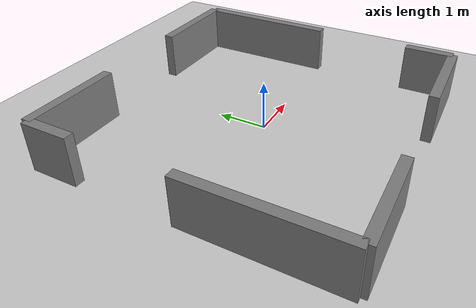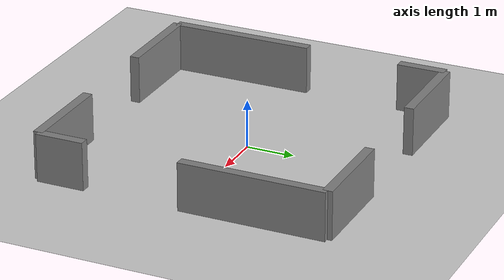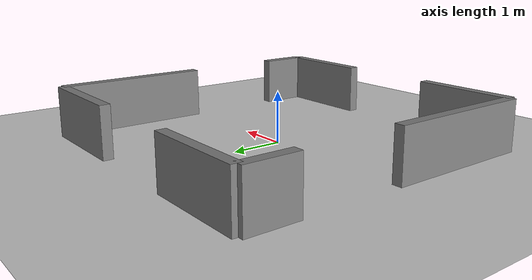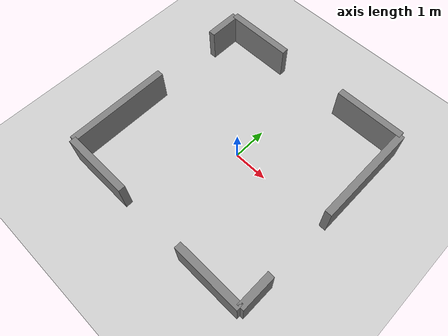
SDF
<?xml version="1.0" ?>
<sdf version="1.8">
  <world name="my_world">
    <physics name="1ms" type="ignored">
      <max_step_size>0.001</max_step_size>
      <real_time_factor>1.0</real_time_factor>
    </physics>
    <plugin
      filename="gz-sim-physics-system"
      name="gz::sim::systems::Physics">
    </plugin>
    <plugin
      filename="gz-sim-user-commands-system"
      name="gz::sim::systems::UserCommands">
    </plugin>
    <plugin
      filename="gz-sim-scene-broadcaster-system"
      name="gz::sim::systems::SceneBroadcaster">
    </plugin>
    <plugin
      filename="gz-sim-sensors-system"
      name="gz::sim::systems::Sensors">
      <render_engine>ogre2</render_engine>
    </plugin>

    <gui fullscreen="0">
      <!-- 3D scene -->
      <plugin filename="MinimalScene" name="3D View">
        <gz-gui>
          <title>3D View</title>
          <property type="bool" key="showTitleBar">false</property>
          <property type="string" key="state">docked</property>
        </gz-gui>
        <engine>ogre2</engine>
        <scene>scene</scene>
        <ambient_light>0.4 0.4 0.4</ambient_light>
        <background_color>0.8 0.8 0.8</background_color>
        <camera_pose>-6 0 6 0 0.5 0</camera_pose>
      </plugin>

      <!-- Plugins that add functionality to the scene -->
      <plugin filename="EntityContextMenuPlugin" name="Entity context menu">
        <gz-gui>
          <property key="state" type="string">floating</property>
          <property key="width" type="double">5</property>
          <property key="height" type="double">5</property>
          <property key="showTitleBar" type="bool">false</property>
        </gz-gui>
      </plugin>
      <plugin filename="GzSceneManager" name="Scene Manager">
        <gz-gui>
          <property key="resizable" type="bool">false</property>
          <property key="width" type="double">5</property>
          <property key="height" type="double">5</property>
          <property key="state" type="string">floating</property>
          <property key="showTitleBar" type="bool">false</property>
        </gz-gui>
      </plugin>
      <plugin filename="InteractiveViewControl" name="Interactive view control">
        <gz-gui>
          <property key="resizable" type="bool">false</property>
          <property key="width" type="double">5</property>
          <property key="height" type="double">5</property>
          <property key="state" type="string">floating</property>
          <property key="showTitleBar" type="bool">false</property>
        </gz-gui>
      </plugin>
      <plugin filename="CameraTracking" name="Camera Tracking">
        <gz-gui>
          <property key="resizable" type="bool">false</property>
          <property key="width" type="double">5</property>
          <property key="height" type="double">5</property>
          <property key="state" type="string">floating</property>
          <property key="showTitleBar" type="bool">false</property>
        </gz-gui>
      </plugin>

      <!-- The Lidar Visualizer -->
      <plugin filename="VisualizeLidar" name="Visualize Lidar">
      </plugin>
    </gui>

    <light type="directional" name="sun">
      <cast_shadows>true</cast_shadows>
      <pose>0 0 10 0 0 0</pose>
      <diffuse>0.8 0.8 0.8 1</diffuse>
      <specular>0.2 0.2 0.2 1</specular>
      <attenuation>
        <range>1000</range>
        <constant>0.9</constant>
        <linear>0.01</linear>
        <quadratic>0.001</quadratic>
      </attenuation>
      <direction>-0.5 0.1 -0.9</direction>
    </light>

    <model name="ground_plane">
      <static>true</static>
      <link name="link">
        <collision name="collision">
          <geometry>
            <plane>
              <normal>0 0 1</normal>
              <size>100 100</size>
            </plane>
          </geometry>
        </collision>
        <visual name="visual">
          <geometry>
            <plane>
              <normal>0 0 1</normal>
              <size>100 100</size>
            </plane>
          </geometry>
          <material>
            <ambient>0.8 0.8 0.8 1</ambient>
            <diffuse>0.8 0.8 0.8 1</diffuse>
            <specular>0.8 0.8 0.8 1</specular>
          </material>
        </visual>
      </link>
    </model>
    <!-- Simple Custom Maze -->
    <model name="simple_maze">
      <static>true</static>

      <!-- North Wall (Left Part) -->
      <link name="wall_north_left">
        <pose>-2 3 0.5 0 0 0</pose>
        <visual name="visual">
          <geometry><box><size>2 0.2 1</size></box></geometry>
          <material><ambient>0.5 0.5 0.5 1</ambient></material>
        </visual>
        <collision name="collision">
          <geometry><box><size>2 0.2 1</size></box></geometry>
        </collision>
      </link>

      <!-- North Wall (Right Part) -->
      <link name="wall_north_right">
        <pose>2 3 0.5 0 0 0</pose>
        <visual name="visual">
          <geometry><box><size>2 0.2 1</size></box></geometry>
          <material><ambient>0.5 0.5 0.5 1</ambient></material>
        </visual>
        <collision name="collision">
          <geometry><box><size>2 0.2 1</size></box></geometry>
        </collision>
      </link>

      <!-- South Wall (Left Part) -->
      <link name="wall_south_left">
        <pose>-2 -3 0.5 0 0 0</pose>
        <visual name="visual">
          <geometry><box><size>2 0.2 1</size></box></geometry>
          <material><ambient>0.5 0.5 0.5 1</ambient></material>
        </visual>
        <collision name="collision">
          <geometry><box><size>2 0.2 1</size></box></geometry>
        </collision>
      </link>

      <!-- South Wall (Right Part) -->
      <link name="wall_south_right">
        <pose>2 -3 0.5 0 0 0</pose>
        <visual name="visual">
          <geometry><box><size>2 0.2 1</size></box></geometry>
          <material><ambient>0.5 0.5 0.5 1</ambient></material>
        </visual>
        <collision name="collision">
          <geometry><box><size>2 0.2 1</size></box></geometry>
        </collision>
      </link>

      <!-- East Wall (Top Part) -->
      <link name="wall_east_top">
        <pose>3 1.5 0.5 0 0 0</pose>
        <visual name="visual">
          <geometry><box><size>0.2 3 1</size></box></geometry>
          <material><ambient>0.5 0.5 0.5 1</ambient></material>
        </visual>
        <collision name="collision">
          <geometry><box><size>0.2 3 1</size></box></geometry>
        </collision>
      </link>

      <!-- East Wall (Bottom Part) -->
      <link name="wall_east_bottom">
        <pose>3 -2.5 0.5 0 0 0</pose>
        <visual name="visual">
          <geometry><box><size>0.2 1 1</size></box></geometry>
          <material><ambient>0.5 0.5 0.5 1</ambient></material>
        </visual>
        <collision name="collision">
          <geometry><box><size>0.2 1 1</size></box></geometry>
        </collision>
      </link>

      <!-- West Wall (Top Part) -->
      <link name="wall_west_top">
        <pose>-3 2.5 0.5 0 0 0</pose>
        <visual name="visual">
          <geometry><box><size>0.2 1 1</size></box></geometry>
          <material><ambient>0.5 0.5 0.5 1</ambient></material>
        </visual>
        <collision name="collision">
          <geometry><box><size>0.2 1 1</size></box></geometry>
        </collision>
      </link>

      <!-- West Wall (Bottom Part) -->
      <link name="wall_west_bottom">
        <pose>-3 -1.5 0.5 0 0 0</pose>
        <visual name="visual">
          <geometry><box><size>0.2 3 1</size></box></geometry>
          <material><ambient>0.5 0.5 0.5 1</ambient></material>
        </visual>
        <collision name="collision">
          <geometry><box><size>0.2 3 1</size></box></geometry>
        </collision>
      </link>
    </model>

  </world>
</sdf>
